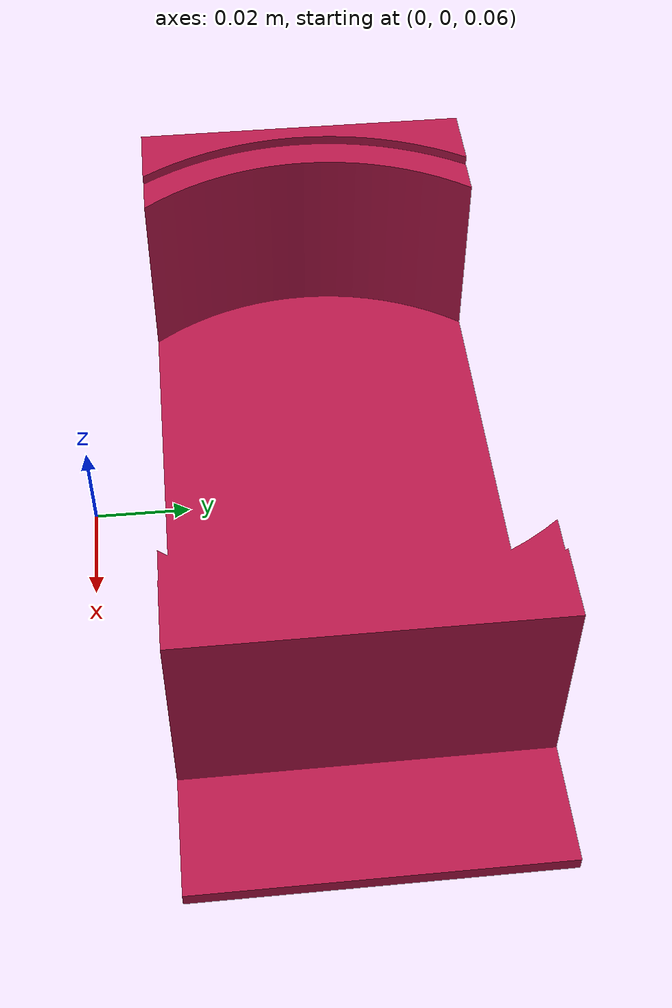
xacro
<?xml version="1.0"?>
<!-- Copyright (c) 2026 Jatin Satyam. SPDX-License-Identifier: Apache-2.0 -->
<robot xmlns:xacro="http://www.ros.org/wiki/xacro" name="conveyor">

  <xacro:arg name="prefix" default="belt_"/>
  <xacro:property name="prefix" value="$(arg prefix)"/>
  <xacro:arg name="controllers_file"
             default="$(find wafer_cell_bringup)/config/conveyor_controllers.yaml"/>
  <xacro:property name="mesh" value="package://wafer_cell_bringup/meshes/belt_holder.stl"/>
  <!-- collision: the same surface cut into 8 mm bands (scripts/split_collision_mesh.py)
       so the ODE mesh tree culls by height; see the tower note in the world file -->
  <xacro:property name="mesh_collision" value="package://wafer_cell_bringup/meshes/belt_holder_collision.stl"/>

  <!-- travel: A = -0.25, C = +0.25. Limits are set WIDER (+/-0.30) so home
       never sits ON a limit - a joint initialised exactly at its limit latches
       and then silently ignores every command. -->
  <xacro:property name="lo"   value="-0.32"/>   <!-- load position -0.25 keeps the 0.05 init margin -->
  <xacro:property name="hi"   value="0.30"/>
  <xacro:property name="home" value="-0.25"/>

  <xacro:arg name="fix_to_world" default="true"/>
  <link name="${prefix}base"/>
  <xacro:if value="$(arg fix_to_world)">
    <link name="world"/>
    <joint name="${prefix}anchor" type="fixed">
      <parent link="world"/><child link="${prefix}base"/>
      <origin xyz="0 0.05 0.06265" rpy="0 0 0"/>
    </joint>
  </xacro:if>

  <!-- carriage:=false leaves only the belt base (telemetry mode: the arms follow live joint
       telemetry and the carrier is not part of that picture) -->
  <xacro:arg name="carriage" default="true"/>
  <xacro:if value="$(arg carriage)">
  <link name="${prefix}carriage">
    <visual>
      <origin xyz="0 0 0.045" rpy="-1.5708 0 0"/>
      <geometry><mesh filename="${mesh}" scale="0.001 0.001 0.001"/></geometry>
      <material name="holder_magenta"><color rgba="0.71 0.09 0.29 1"/></material>
    </visual>
    <collision>
      <origin xyz="0 0 0.045" rpy="-1.5708 0 0"/>
      <geometry><mesh filename="${mesh_collision}" scale="0.001 0.001 0.001"/></geometry>
    </collision>
    <inertial>
      <origin xyz="0 0 0.020"/>
      <mass value="0.12"/>
      <inertia ixx="1.2e-4" ixy="0" ixz="0" iyy="1.2e-4" iyz="0" izz="1.6e-4"/>
    </inertial>
  </link>

  <joint name="${prefix}travel" type="prismatic">
    <parent link="${prefix}base"/><child link="${prefix}carriage"/>
    <origin xyz="0 0 0"/>
    <axis xyz="1 0 0"/>
    <limit lower="${lo}" upper="${hi}" effort="200.0" velocity="0.5"/>
    <dynamics damping="5.0" friction="1.0"/>
  </joint>
  </xacro:if>

  <xacro:arg name="use_gz_control" default="true"/>
  <xacro:if value="$(arg use_gz_control)">
  <ros2_control name="${prefix}system" type="system">
    <hardware><plugin>gz_ros2_control/GazeboSimSystem</plugin></hardware>
    <joint name="${prefix}travel">
      <command_interface name="position">
        <param name="min">${lo}</param><param name="max">${hi}</param>
      </command_interface>
      <state_interface name="position"><param name="initial_value">${home}</param></state_interface>
      <state_interface name="velocity"/>
      <state_interface name="effort"/>
    </joint>
  </ros2_control>

  <gazebo>
    <plugin filename="gz_ros2_control-system"
            name="gz_ros2_control::GazeboSimROS2ControlPlugin">
      <parameters>$(arg controllers_file)</parameters>
      <ros>
        <namespace>/belt</namespace>
      </ros>
    </plugin>
  </gazebo>
  </xacro:if>
</robot>
